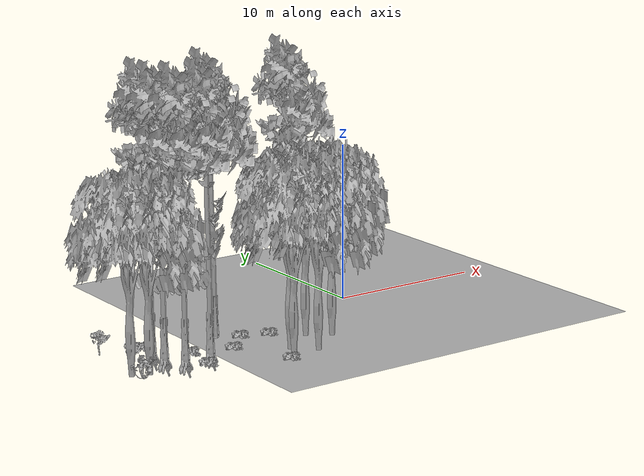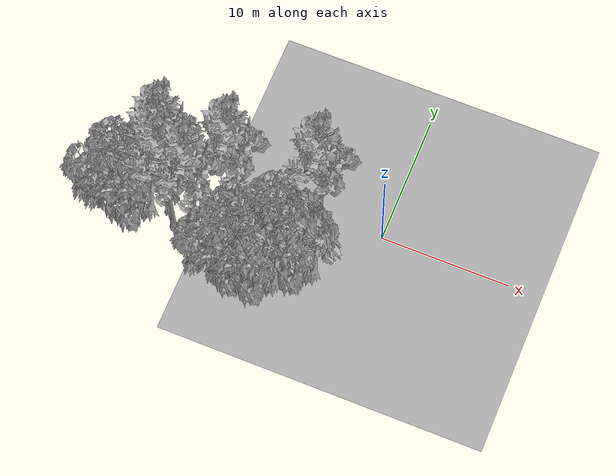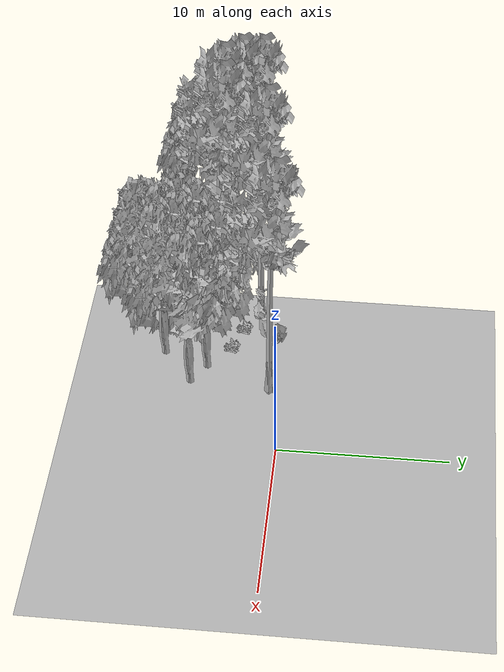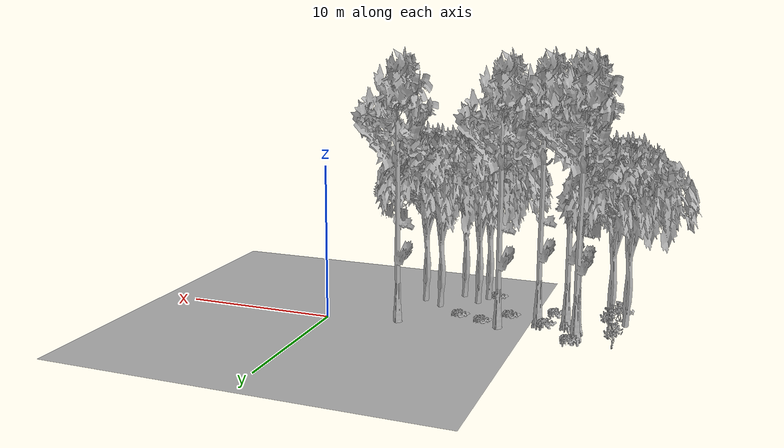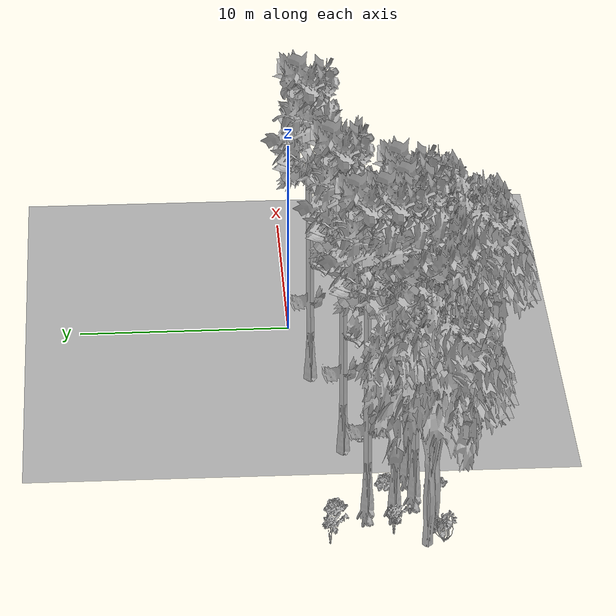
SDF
<sdf version="1.7">
 <world name="default">
  <model name="ground_plane">
   <static>1</static>
   <link name="link">
    <collision name="collision">
     <pose>-50 0 0 0 -0 0</pose>
     <geometry><plane><normal>0 0 1</normal><size>80 80</size></plane></geometry>
     <surface><contact><ode><min_depth>0.01</min_depth><max_vel>0</max_vel></ode></contact></surface>
    </collision>
    <visual name="grass">
     <cast_shadows>0</cast_shadows>
     <geometry>
      <mesh>
       <scale>0.46714285714285714 0.46714285714285714 0.1</scale>
       <uri>file://grass_plane/meshes/grass_plane.dae</uri>
      </mesh>
     </geometry>
    </visual>
   </link>
  </model>
  <model name="Tree 31">
   <static>1</static>
   <pose>-6.2792954632388955 -4.744793343398435 0 1.57079 -0 0</pose>
   <link name="link">
    <collision name="collision">
     <geometry><mesh><scale>3.5 5 3.5</scale><uri>model://tree_2/meshes/tree_2.obj</uri></mesh></geometry>
    </collision>
    <visual name="visual">
     <geometry><mesh><scale>3.5 5 3.5</scale><uri>model://tree_2/meshes/tree_2.obj</uri></mesh></geometry>
    </visual>
   </link>
  </model>
  <model name="Tree 32">
   <static>1</static>
   <pose>-7.210779180461927 -7.417850123513645 0 1.57079 -0 0</pose>
   <link name="link">
    <collision name="collision">
     <geometry><mesh><scale>3.5 5 3.5</scale><uri>model://tree_2/meshes/tree_2.obj</uri></mesh></geometry>
    </collision>
    <visual name="visual">
     <geometry><mesh><scale>3.5 5 3.5</scale><uri>model://tree_2/meshes/tree_2.obj</uri></mesh></geometry>
    </visual>
   </link>
  </model>
  <model name="Tree 47">
   <static>1</static>
   <pose>-10.829789958678578 -1.9163663962967519 0 1.57079 -0 0</pose>
   <link name="link">
    <collision name="collision">
     <geometry><mesh><scale>3.5 5 3.5</scale><uri>model://tree_9/meshes/tree_9.obj</uri></mesh></geometry>
    </collision>
    <visual name="visual">
     <geometry><mesh><scale>3.5 5 3.5</scale><uri>model://tree_9/meshes/tree_9.obj</uri></mesh></geometry>
    </visual>
   </link>
  </model>
  <model name="Tree 67">
   <static>1</static>
   <pose>-15.469253847863289 -3.8945248329802595 0 1.57079 -0 0</pose>
   <link name="link">
    <collision name="collision">
     <geometry><mesh><scale>3.5 5 3.5</scale><uri>model://tree_9/meshes/tree_9.obj</uri></mesh></geometry>
    </collision>
    <visual name="visual">
     <geometry><mesh><scale>3.5 5 3.5</scale><uri>model://tree_9/meshes/tree_9.obj</uri></mesh></geometry>
    </visual>
   </link>
  </model>
  <model name="Tree 76">
   <static>1</static>
   <pose>-8.463218723172094 -6.333010288917755 0 1.57079 -0 0</pose>
   <link name="link">
    <collision name="collision">
     <geometry><mesh><scale>3.5 5 3.5</scale><uri>model://tree_2/meshes/tree_2.obj</uri></mesh></geometry>
    </collision>
    <visual name="visual">
     <geometry><mesh><scale>3.5 5 3.5</scale><uri>model://tree_2/meshes/tree_2.obj</uri></mesh></geometry>
    </visual>
   </link>
  </model>
  <model name="Tree 84">
   <static>1</static>
   <pose>-18.426088458697954 -5.13961546546853 0 1.57079 -0 0</pose>
   <link name="link">
    <collision name="collision">
     <geometry><mesh><scale>3.5 5 3.5</scale><uri>model://tree_2/meshes/tree_2.obj</uri></mesh></geometry>
    </collision>
    <visual name="visual">
     <geometry><mesh><scale>3.5 5 3.5</scale><uri>model://tree_2/meshes/tree_2.obj</uri></mesh></geometry>
    </visual>
   </link>
  </model>
  <model name="Tree 255">
   <static>1</static>
   <pose>-17.41825818173217 -5.453776722669865 0 1.57079 -0 0</pose>
   <link name="link">
    <collision name="collision">
     <geometry><mesh><scale>3.5 5 3.5</scale><uri>model://tree_2/meshes/tree_2.obj</uri></mesh></geometry>
    </collision>
    <visual name="visual">
     <geometry><mesh><scale>3.5 5 3.5</scale><uri>model://tree_2/meshes/tree_2.obj</uri></mesh></geometry>
    </visual>
   </link>
  </model>
  <model name="Tree 312">
   <static>1</static>
   <pose>-4.533945959960555 -0.795968016994351 0 1.57079 -0 0</pose>
   <link name="link">
    <collision name="collision">
     <geometry><mesh><scale>3.5 5 3.5</scale><uri>model://tree_9/meshes/tree_9.obj</uri></mesh></geometry>
    </collision>
    <visual name="visual">
     <geometry><mesh><scale>3.5 5 3.5</scale><uri>model://tree_9/meshes/tree_9.obj</uri></mesh></geometry>
    </visual>
   </link>
  </model>
  <model name="Tree 382">
   <static>1</static>
   <pose>-8.929184639839022 -7.39154091535292 0 1.57079 -0 0</pose>
   <link name="link">
    <collision name="collision">
     <geometry><mesh><scale>3.5 5 3.5</scale><uri>model://tree_2/meshes/tree_2.obj</uri></mesh></geometry>
    </collision>
    <visual name="visual">
     <geometry><mesh><scale>3.5 5 3.5</scale><uri>model://tree_2/meshes/tree_2.obj</uri></mesh></geometry>
    </visual>
   </link>
  </model>
  <model name="Tree 402">
   <static>1</static>
   <pose>-4.955995038312572 -5.611612098350243 0 1.57079 -0 0</pose>
   <link name="link">
    <collision name="collision">
     <geometry><mesh><scale>3.5 5 3.5</scale><uri>model://tree_2/meshes/tree_2.obj</uri></mesh></geometry>
    </collision>
    <visual name="visual">
     <geometry><mesh><scale>3.5 5 3.5</scale><uri>model://tree_2/meshes/tree_2.obj</uri></mesh></geometry>
    </visual>
   </link>
  </model>
  <model name="Tree 425">
   <static>1</static>
   <pose>-14.6341185522692 -4.83270278813302 0 1.57079 -0 0</pose>
   <link name="link">
    <collision name="collision">
     <geometry><mesh><scale>3.5 5 3.5</scale><uri>model://tree_9/meshes/tree_9.obj</uri></mesh></geometry>
    </collision>
    <visual name="visual">
     <geometry><mesh><scale>3.5 5 3.5</scale><uri>model://tree_9/meshes/tree_9.obj</uri></mesh></geometry>
    </visual>
   </link>
  </model>
  <model name="Tree 429">
   <static>1</static>
   <pose>-12.831569498846395 -4.643198988323292 0 1.57079 -0 0</pose>
   <link name="link">
    <collision name="collision">
     <geometry><mesh><scale>3.5 5 3.5</scale><uri>model://tree_9/meshes/tree_9.obj</uri></mesh></geometry>
    </collision>
    <visual name="visual">
     <geometry><mesh><scale>3.5 5 3.5</scale><uri>model://tree_9/meshes/tree_9.obj</uri></mesh></geometry>
    </visual>
   </link>
  </model>
  <model name="Tree 497">
   <static>1</static>
   <pose>-15.577751474326366 -2.677092971710607 0 1.57079 -0 0</pose>
   <link name="link">
    <collision name="collision">
     <geometry><mesh><scale>3.5 5 3.5</scale><uri>model://tree_9/meshes/tree_9.obj</uri></mesh></geometry>
    </collision>
    <visual name="visual">
     <geometry><mesh><scale>3.5 5 3.5</scale><uri>model://tree_9/meshes/tree_9.obj</uri></mesh></geometry>
    </visual>
   </link>
  </model>
  <model name="Bush 50">
   <static>1</static>
   <pose>-18.038843836960197 -0.8839656348945297 0 1.57079 -0 0</pose>
   <link name="link">
    <collision name="collision">
     <geometry><mesh><scale>2 2 2</scale><uri>model://bush_5/meshes/bush_5.obj</uri></mesh></geometry>
     <surface><contact><collide_without_contact>false</collide_without_contact></contact></surface>
    </collision>
    <visual name="visual">
     <geometry><mesh><scale>2 2 2</scale><uri>model://bush_5/meshes/bush_5.obj</uri></mesh></geometry>
    </visual>
   </link>
  </model>
  <model name="Bush 61">
   <static>1</static>
   <pose>-18.00748146368044 -5.901909654236874 0 1.57079 -0 0</pose>
   <link name="link">
    <collision name="collision">
     <geometry><mesh><scale>2 2 2</scale><uri>model://bush_4/meshes/bush_4.obj</uri></mesh></geometry>
     <surface><contact><collide_without_contact>false</collide_without_contact></contact></surface>
    </collision>
    <visual name="visual">
     <geometry><mesh><scale>2 2 2</scale><uri>model://bush_4/meshes/bush_4.obj</uri></mesh></geometry>
    </visual>
   </link>
  </model>
  <model name="Bush 82">
   <static>1</static>
   <pose>-9.58411390029892 -2.8086584613024783 0 1.57079 -0 0</pose>
   <link name="link">
    <collision name="collision">
     <geometry><mesh><scale>2 2 2</scale><uri>model://bush_2/meshes/bush_2.obj</uri></mesh></geometry>
     <surface><contact><collide_without_contact>false</collide_without_contact></contact></surface>
    </collision>
    <visual name="visual">
     <geometry><mesh><scale>2 2 2</scale><uri>model://bush_2/meshes/bush_2.obj</uri></mesh></geometry>
    </visual>
   </link>
  </model>
  <model name="Bush 127">
   <static>1</static>
   <pose>-11.083901947240772 -4.435554026655851 0 1.57079 -0 0</pose>
   <link name="link">
    <collision name="collision">
     <geometry><mesh><scale>2 2 2</scale><uri>model://bush_2/meshes/bush_2.obj</uri></mesh></geometry>
     <surface><contact><collide_without_contact>false</collide_without_contact></contact></surface>
    </collision>
    <visual name="visual">
     <geometry><mesh><scale>2 2 2</scale><uri>model://bush_2/meshes/bush_2.obj</uri></mesh></geometry>
    </visual>
   </link>
  </model>
  <model name="Bush 154">
   <static>1</static>
   <pose>-17.42936338567565 -3.7084163738370535 0 1.57079 -0 0</pose>
   <link name="link">
    <collision name="collision">
     <geometry><mesh><scale>2 2 2</scale><uri>model://bush_5/meshes/bush_5.obj</uri></mesh></geometry>
     <surface><contact><collide_without_contact>false</collide_without_contact></contact></surface>
    </collision>
    <visual name="visual">
     <geometry><mesh><scale>2 2 2</scale><uri>model://bush_5/meshes/bush_5.obj</uri></mesh></geometry>
    </visual>
   </link>
  </model>
  <model name="Bush 333">
   <static>1</static>
   <pose>-7.921823626245171 -3.4109690738388423 0 1.57079 -0 0</pose>
   <link name="link">
    <collision name="collision">
     <geometry><mesh><scale>2 2 2</scale><uri>model://bush_2/meshes/bush_2.obj</uri></mesh></geometry>
     <surface><contact><collide_without_contact>false</collide_without_contact></contact></surface>
    </collision>
    <visual name="visual">
     <geometry><mesh><scale>2 2 2</scale><uri>model://bush_2/meshes/bush_2.obj</uri></mesh></geometry>
    </visual>
   </link>
  </model>
  <model name="Bush 482">
   <static>1</static>
   <pose>-13.580795731201679 -3.695332439753713 0 1.57079 -0 0</pose>
   <link name="link">
    <collision name="collision">
     <geometry><mesh><scale>2 2 2</scale><uri>model://bush_2/meshes/bush_2.obj</uri></mesh></geometry>
     <surface><contact><collide_without_contact>false</collide_without_contact></contact></surface>
    </collision>
    <visual name="visual">
     <geometry><mesh><scale>2 2 2</scale><uri>model://bush_2/meshes/bush_2.obj</uri></mesh></geometry>
    </visual>
   </link>
  </model>
  <model name="Bush 526">
   <static>1</static>
   <pose>-9.395473683526635 -7.939196738957492 0 1.57079 -0 0</pose>
   <link name="link">
    <collision name="collision">
     <geometry><mesh><scale>2 2 2</scale><uri>model://bush_2/meshes/bush_2.obj</uri></mesh></geometry>
     <surface><contact><collide_without_contact>false</collide_without_contact></contact></surface>
    </collision>
    <visual name="visual">
     <geometry><mesh><scale>2 2 2</scale><uri>model://bush_2/meshes/bush_2.obj</uri></mesh></geometry>
    </visual>
   </link>
  </model>
  <model name="Bush 582">
   <static>1</static>
   <pose>-15.427489868589962 -1.3090806106452746 0 1.57079 -0 0</pose>
   <link name="link">
    <collision name="collision">
     <geometry><mesh><scale>2 2 2</scale><uri>model://bush_2/meshes/bush_2.obj</uri></mesh></geometry>
     <surface><contact><collide_without_contact>false</collide_without_contact></contact></surface>
    </collision>
    <visual name="visual">
     <geometry><mesh><scale>2 2 2</scale><uri>model://bush_2/meshes/bush_2.obj</uri></mesh></geometry>
    </visual>
   </link>
  </model>
  <model name="Bush 586">
   <static>1</static>
   <pose>-13.79125208170073 -5.897325049281996 0 1.57079 -0 0</pose>
   <link name="link">
    <collision name="collision">
     <geometry><mesh><scale>2 2 2</scale><uri>model://bush_2/meshes/bush_2.obj</uri></mesh></geometry>
     <surface><contact><collide_without_contact>false</collide_without_contact></contact></surface>
    </collision>
    <visual name="visual">
     <geometry><mesh><scale>2 2 2</scale><uri>model://bush_2/meshes/bush_2.obj</uri></mesh></geometry>
    </visual>
   </link>
  </model>
 </world>
</sdf>
